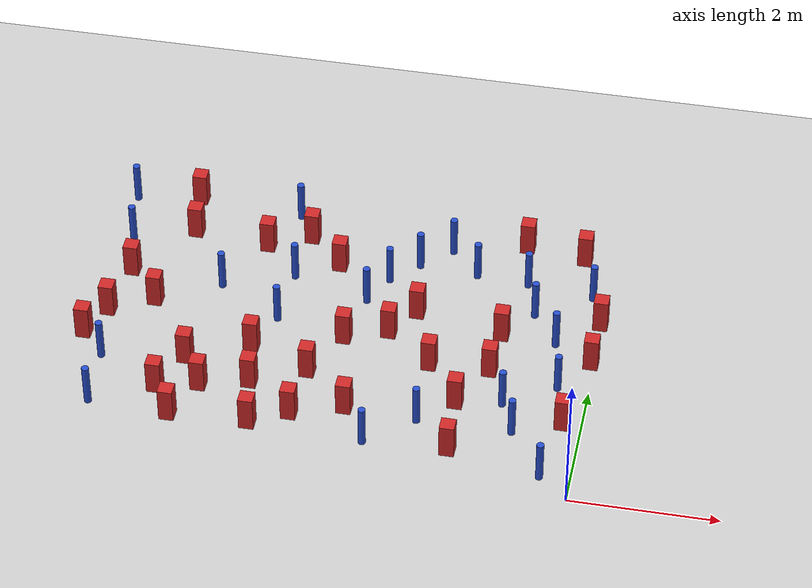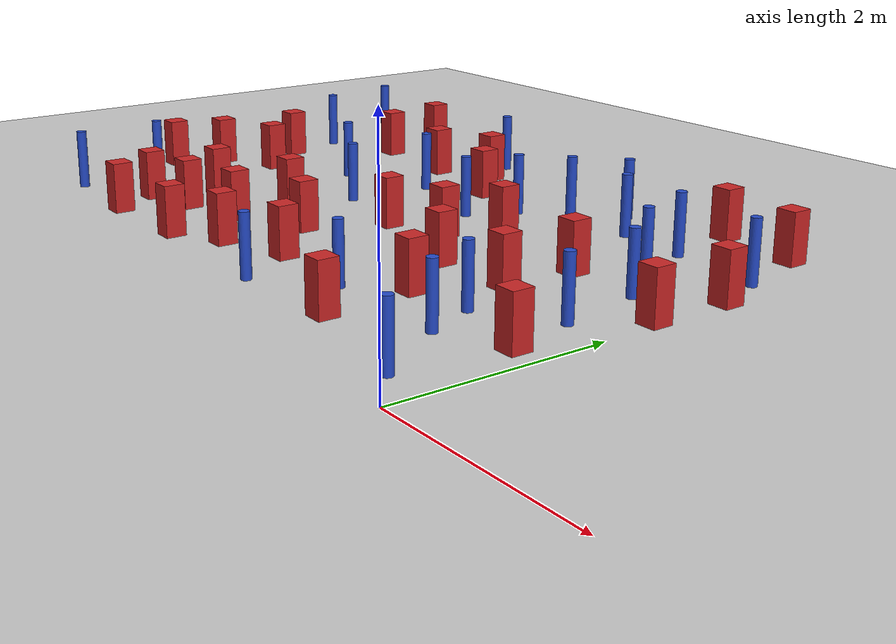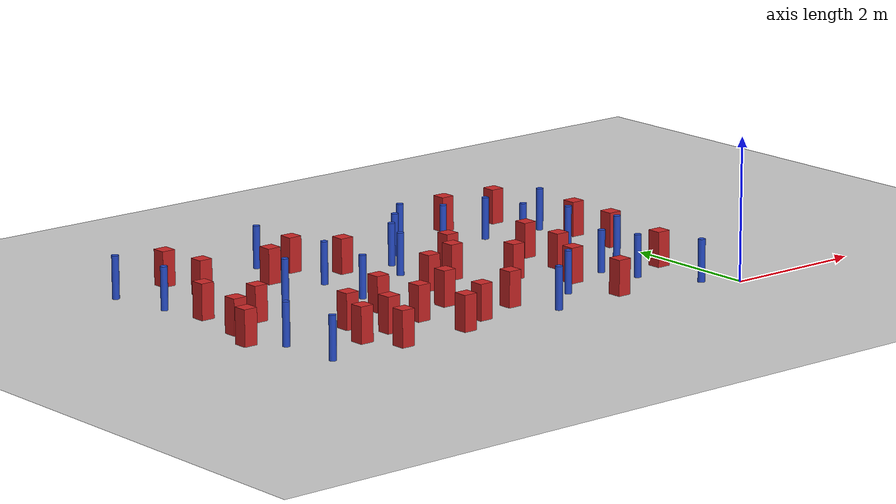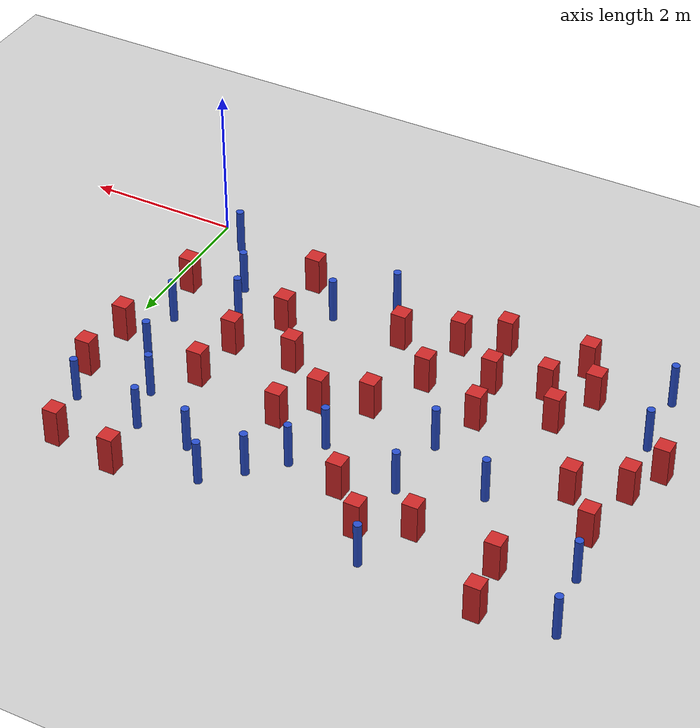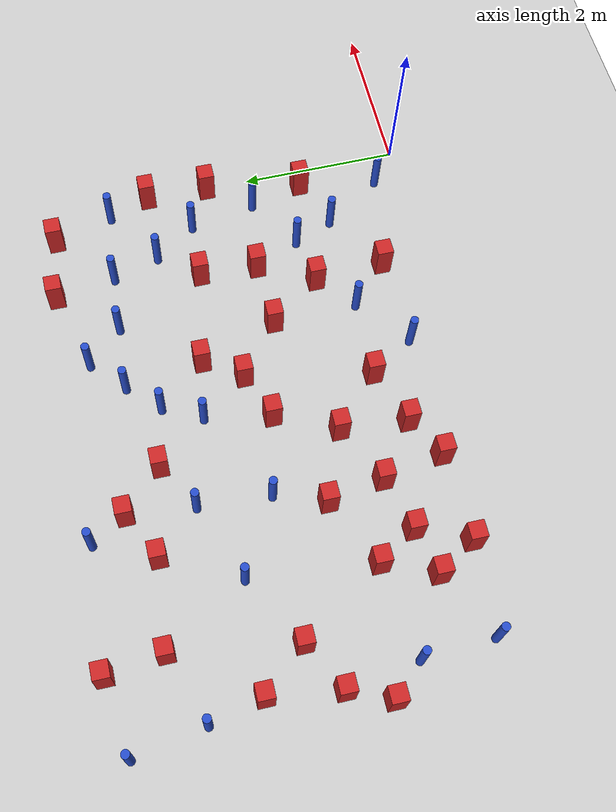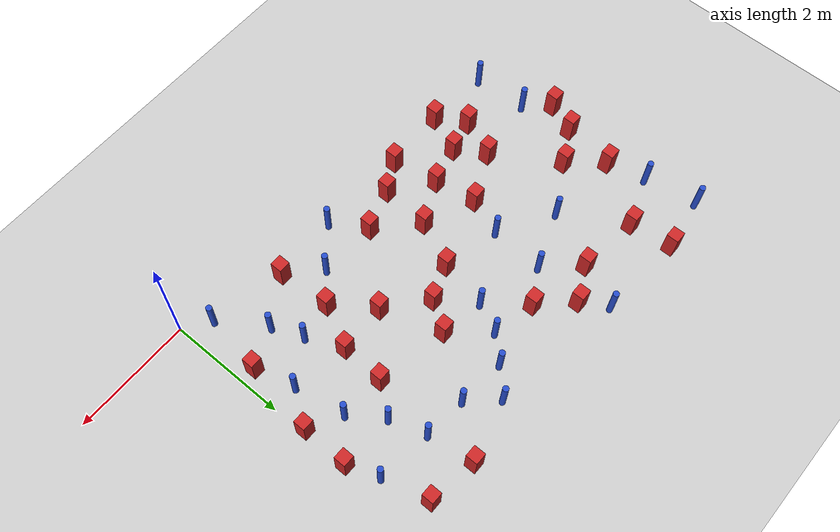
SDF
<sdf version="1.6">
 <world name="default">
  <model name="ground_plane">
   <static>1</static>
   <link name="link">
    <collision name="collision">
     <geometry><plane><normal>0 0 1</normal><size>100 100</size></plane></geometry>
     <surface><friction><ode><mu>100</mu><mu2>50</mu2></ode></friction></surface>
    </collision>
    <visual name="visual">
     <cast_shadows>0</cast_shadows>
     <geometry><plane><normal>0 0 1</normal><size>100 100</size></plane></geometry>
     <material>
      <ambient>1.0 1.0 1.0 1.0</ambient>
      <diffuse>0.8 0.8 0.8 1.0</diffuse>
      <specular>0.01 0.01 0.01 1.000000</specular>
     </material>
    </visual>
   </link>
  </model>
  <model name="square_post_obstacle1">
   <static>true</static>
   <pose>-2.1941598513 2.13643566716 1.91545236811e-07 -7.35059704564e-06 1.12565212e-07 2.39332434364e-05</pose>
   <link name="link">
    <pose>0 0 0.25 0 -0 0</pose>
    <inertial>
     <mass>100</mass>
     <inertia>
      <ixx>0.166667</ixx>
      <ixy>0</ixy>
      <ixz>0</ixz>
      <iyy>0.166667</iyy>
      <iyz>0</iyz>
      <izz>0.166667</izz>
     </inertia>
    </inertial>
    <collision name="collision"><geometry><box><size>.2 .2 .5</size></box></geometry></collision>
    <visual name="visual">
     <geometry><box><size>.2 .2 .5</size></box></geometry>
     <material>
      <script><name>Gazebo/Red</name><uri>file://media/materials/scripts/gazebo.material</uri></script>
     </material>
    </visual>
   </link>
  </model>
  <model name="square_post_obstacle3">
   <static>true</static>
   <pose>-1.26131699538 4.73881055058 1.91545236811e-07 -7.35059704564e-06 1.12565212e-07 2.39332434364e-05</pose>
   <link name="link">
    <pose>0 0 0.25 0 -0 0</pose>
    <inertial>
     <mass>100</mass>
     <inertia>
      <ixx>0.166667</ixx>
      <ixy>0</ixy>
      <ixz>0</ixz>
      <iyy>0.166667</iyy>
      <iyz>0</iyz>
      <izz>0.166667</izz>
     </inertia>
    </inertial>
    <collision name="collision"><geometry><box><size>.2 .2 .5</size></box></geometry></collision>
    <visual name="visual">
     <geometry><box><size>.2 .2 .5</size></box></geometry>
     <material>
      <script><name>Gazebo/Red</name><uri>file://media/materials/scripts/gazebo.material</uri></script>
     </material>
    </visual>
   </link>
  </model>
  <model name="pole_obstacle4">
   <static>true</static>
   <pose>-0.581186451945 2.85597149366 7.38925637345e-09 -8.47170692799e-08 1.2497676509e-08 -1.74513093016e-07</pose>
   <link name="link">
    <pose>0 0 0.3 0 -0 0</pose>
    <inertial>
     <mass>1</mass>
     <inertia><ixx>0.145833</ixx><ixy>0</ixy><ixz>0</ixz><iyy>0.145833</iyy><iyz>0</iyz><izz>0.125</izz></inertia>
    </inertial>
    <collision name="collision">
     <geometry><cylinder><radius>0.05</radius><length>.6</length></cylinder></geometry>
    </collision>
    <visual name="visual">
     <geometry><cylinder><radius>0.05</radius><length>.6</length></cylinder></geometry>
     <material>
      <script><name>Gazebo/Blue</name><uri>file://media/materials/scripts/gazebo.material</uri></script>
     </material>
    </visual>
   </link>
  </model>
  <model name="pole_obstacle8">
   <static>true</static>
   <pose>-2.16732002486 1.0621560365 7.38925637345e-09 -8.471706928e-08 1.24976765152e-08 -1.74513093012e-07</pose>
   <link name="link">
    <pose>0 0 0.3 0 -0 0</pose>
    <inertial>
     <mass>1</mass>
     <inertia><ixx>0.145833</ixx><ixy>0</ixy><ixz>0</ixz><iyy>0.145833</iyy><iyz>0</iyz><izz>0.125</izz></inertia>
    </inertial>
    <collision name="collision">
     <geometry><cylinder><radius>0.05</radius><length>.6</length></cylinder></geometry>
    </collision>
    <visual name="visual">
     <geometry><cylinder><radius>0.05</radius><length>.6</length></cylinder></geometry>
     <material>
      <script><name>Gazebo/Blue</name><uri>file://media/materials/scripts/gazebo.material</uri></script>
     </material>
    </visual>
   </link>
  </model>
  <model name="square_post_obstacle19">
   <static>true</static>
   <pose>-1.37294681692 2.16979224716 1.91545236811e-07 -7.35059704564e-06 1.12565212e-07 2.39332434364e-05</pose>
   <link name="link">
    <pose>0 0 0.25 0 -0 0</pose>
    <inertial>
     <mass>100</mass>
     <inertia>
      <ixx>0.166667</ixx>
      <ixy>0</ixy>
      <ixz>0</ixz>
      <iyy>0.166667</iyy>
      <iyz>0</iyz>
      <izz>0.166667</izz>
     </inertia>
    </inertial>
    <collision name="collision"><geometry><box><size>.2 .2 .5</size></box></geometry></collision>
    <visual name="visual">
     <geometry><box><size>.2 .2 .5</size></box></geometry>
     <material>
      <script><name>Gazebo/Red</name><uri>file://media/materials/scripts/gazebo.material</uri></script>
     </material>
    </visual>
   </link>
  </model>
  <model name="square_post_obstacle20">
   <static>true</static>
   <pose>-5.15516237254 1.18091406253 1.91545236811e-07 -7.35059704564e-06 1.12565212e-07 2.39332434364e-05</pose>
   <link name="link">
    <pose>0 0 0.25 0 -0 0</pose>
    <inertial>
     <mass>100</mass>
     <inertia>
      <ixx>0.166667</ixx>
      <ixy>0</ixy>
      <ixz>0</ixz>
      <iyy>0.166667</iyy>
      <iyz>0</iyz>
      <izz>0.166667</izz>
     </inertia>
    </inertial>
    <collision name="collision"><geometry><box><size>.2 .2 .5</size></box></geometry></collision>
    <visual name="visual">
     <geometry><box><size>.2 .2 .5</size></box></geometry>
     <material>
      <script><name>Gazebo/Red</name><uri>file://media/materials/scripts/gazebo.material</uri></script>
     </material>
    </visual>
   </link>
  </model>
  <model name="square_post_obstacle26">
   <static>true</static>
   <pose>-4.62506961678 2.05364620012 1.91545236811e-07 -7.35059704564e-06 1.12565212e-07 2.39332434364e-05</pose>
   <link name="link">
    <pose>0 0 0.25 0 -0 0</pose>
    <inertial>
     <mass>100</mass>
     <inertia>
      <ixx>0.166667</ixx>
      <ixy>0</ixy>
      <ixz>0</ixz>
      <iyy>0.166667</iyy>
      <iyz>0</iyz>
      <izz>0.166667</izz>
     </inertia>
    </inertial>
    <collision name="collision"><geometry><box><size>.2 .2 .5</size></box></geometry></collision>
    <visual name="visual">
     <geometry><box><size>.2 .2 .5</size></box></geometry>
     <material>
      <script><name>Gazebo/Red</name><uri>file://media/materials/scripts/gazebo.material</uri></script>
     </material>
    </visual>
   </link>
  </model>
  <model name="square_post_obstacle28">
   <static>true</static>
   <pose>-3.84744524515 0.870388942941 1.91545236811e-07 -7.35059704564e-06 1.12565212e-07 2.39332434364e-05</pose>
   <link name="link">
    <pose>0 0 0.25 0 -0 0</pose>
    <inertial>
     <mass>100</mass>
     <inertia>
      <ixx>0.166667</ixx>
      <ixy>0</ixy>
      <ixz>0</ixz>
      <iyy>0.166667</iyy>
      <iyz>0</iyz>
      <izz>0.166667</izz>
     </inertia>
    </inertial>
    <collision name="collision"><geometry><box><size>.2 .2 .5</size></box></geometry></collision>
    <visual name="visual">
     <geometry><box><size>.2 .2 .5</size></box></geometry>
     <material>
      <script><name>Gazebo/Red</name><uri>file://media/materials/scripts/gazebo.material</uri></script>
     </material>
    </visual>
   </link>
  </model>
  <model name="pole_obstacle19">
   <static>true</static>
   <pose>-3.03865753315 3.7216535763 7.38925637345e-09 -8.471706928e-08 1.24976765098e-08 -1.74513093016e-07</pose>
   <link name="link">
    <pose>0 0 0.3 0 -0 0</pose>
    <inertial>
     <mass>1</mass>
     <inertia><ixx>0.145833</ixx><ixy>0</ixy><ixz>0</ixz><iyy>0.145833</iyy><iyz>0</iyz><izz>0.125</izz></inertia>
    </inertial>
    <collision name="collision">
     <geometry><cylinder><radius>0.05</radius><length>.6</length></cylinder></geometry>
    </collision>
    <visual name="visual">
     <geometry><cylinder><radius>0.05</radius><length>.6</length></cylinder></geometry>
     <material>
      <script><name>Gazebo/Blue</name><uri>file://media/materials/scripts/gazebo.material</uri></script>
     </material>
    </visual>
   </link>
  </model>
  <model name="square_post_obstacle31">
   <static>true</static>
   <pose>-3.14923688719 1.11010596729 1.91545236811e-07 -7.35059704564e-06 1.12565212e-07 2.39332434364e-05</pose>
   <link name="link">
    <pose>0 0 0.25 0 -0 0</pose>
    <inertial>
     <mass>100</mass>
     <inertia>
      <ixx>0.166667</ixx>
      <ixy>0</ixy>
      <ixz>0</ixz>
      <iyy>0.166667</iyy>
      <iyz>0</iyz>
      <izz>0.166667</izz>
     </inertia>
    </inertial>
    <collision name="collision"><geometry><box><size>.2 .2 .5</size></box></geometry></collision>
    <visual name="visual">
     <geometry><box><size>.2 .2 .5</size></box></geometry>
     <material>
      <script><name>Gazebo/Red</name><uri>file://media/materials/scripts/gazebo.material</uri></script>
     </material>
    </visual>
   </link>
  </model>
  <model name="pole_obstacle24">
   <static>true</static>
   <pose>-2.79543351496 0.53708310227 7.38925637345e-09 -8.471706928e-08 1.24976765147e-08 -1.74513093014e-07</pose>
   <link name="link">
    <pose>0 0 0.3 0 -0 0</pose>
    <inertial>
     <mass>1</mass>
     <inertia><ixx>0.145833</ixx><ixy>0</ixy><ixz>0</ixz><iyy>0.145833</iyy><iyz>0</iyz><izz>0.125</izz></inertia>
    </inertial>
    <collision name="collision">
     <geometry><cylinder><radius>0.05</radius><length>.6</length></cylinder></geometry>
    </collision>
    <visual name="visual">
     <geometry><cylinder><radius>0.05</radius><length>.6</length></cylinder></geometry>
     <material>
      <script><name>Gazebo/Blue</name><uri>file://media/materials/scripts/gazebo.material</uri></script>
     </material>
    </visual>
   </link>
  </model>
  <model name="square_post_obstacle32">
   <static>true</static>
   <pose>-0.0526810248159 2.56233187725 1.91545236811e-07 -7.35059704564e-06 1.12565212e-07 2.39332434364e-05</pose>
   <link name="link">
    <pose>0 0 0.25 0 -0 0</pose>
    <inertial>
     <mass>100</mass>
     <inertia>
      <ixx>0.166667</ixx>
      <ixy>0</ixy>
      <ixz>0</ixz>
      <iyy>0.166667</iyy>
      <iyz>0</iyz>
      <izz>0.166667</izz>
     </inertia>
    </inertial>
    <collision name="collision"><geometry><box><size>.2 .2 .5</size></box></geometry></collision>
    <visual name="visual">
     <geometry><box><size>.2 .2 .5</size></box></geometry>
     <material>
      <script><name>Gazebo/Red</name><uri>file://media/materials/scripts/gazebo.material</uri></script>
     </material>
    </visual>
   </link>
  </model>
  <model name="pole_obstacle31">
   <static>true</static>
   <pose>-6.53448392592 0.619417620157 7.38925637345e-09 -8.47170692799e-08 1.24976765038e-08 -1.74513093018e-07</pose>
   <link name="link">
    <pose>0 0 0.3 0 -0 0</pose>
    <inertial>
     <mass>1</mass>
     <inertia><ixx>0.145833</ixx><ixy>0</ixy><ixz>0</ixz><iyy>0.145833</iyy><iyz>0</iyz><izz>0.125</izz></inertia>
    </inertial>
    <collision name="collision">
     <geometry><cylinder><radius>0.05</radius><length>.6</length></cylinder></geometry>
    </collision>
    <visual name="visual">
     <geometry><cylinder><radius>0.05</radius><length>.6</length></cylinder></geometry>
     <material>
      <script><name>Gazebo/Blue</name><uri>file://media/materials/scripts/gazebo.material</uri></script>
     </material>
    </visual>
   </link>
  </model>
  <model name="square_post_obstacle36">
   <static>true</static>
   <pose>-0.433892986571 4.62385572912 1.91545236811e-07 -7.35059704564e-06 1.12565212e-07 2.39332434364e-05</pose>
   <link name="link">
    <pose>0 0 0.25 0 -0 0</pose>
    <inertial>
     <mass>100</mass>
     <inertia>
      <ixx>0.166667</ixx>
      <ixy>0</ixy>
      <ixz>0</ixz>
      <iyy>0.166667</iyy>
      <iyz>0</iyz>
      <izz>0.166667</izz>
     </inertia>
    </inertial>
    <collision name="collision"><geometry><box><size>.2 .2 .5</size></box></geometry></collision>
    <visual name="visual">
     <geometry><box><size>.2 .2 .5</size></box></geometry>
     <material>
      <script><name>Gazebo/Red</name><uri>file://media/materials/scripts/gazebo.material</uri></script>
     </material>
    </visual>
   </link>
  </model>
  <model name="pole_obstacle39">
   <static>true</static>
   <pose>-4.34571707519 3.55198365419 7.38925637345e-09 -8.47170692798e-08 1.24976764937e-08 -1.74513093023e-07</pose>
   <link name="link">
    <pose>0 0 0.3 0 -0 0</pose>
    <inertial>
     <mass>1</mass>
     <inertia><ixx>0.145833</ixx><ixy>0</ixy><ixz>0</ixz><iyy>0.145833</iyy><iyz>0</iyz><izz>0.125</izz></inertia>
    </inertial>
    <collision name="collision">
     <geometry><cylinder><radius>0.05</radius><length>.6</length></cylinder></geometry>
    </collision>
    <visual name="visual">
     <geometry><cylinder><radius>0.05</radius><length>.6</length></cylinder></geometry>
     <material>
      <script><name>Gazebo/Blue</name><uri>file://media/materials/scripts/gazebo.material</uri></script>
     </material>
    </visual>
   </link>
  </model>
  <model name="pole_obstacle46">
   <static>true</static>
   <pose>-1.13536427486 3.97697436497 7.38925637345e-09 -8.47170692799e-08 1.24976765077e-08 -1.74513093019e-07</pose>
   <link name="link">
    <pose>0 0 0.3 0 -0 0</pose>
    <inertial>
     <mass>1</mass>
     <inertia><ixx>0.145833</ixx><ixy>0</ixy><ixz>0</ixz><iyy>0.145833</iyy><iyz>0</iyz><izz>0.125</izz></inertia>
    </inertial>
    <collision name="collision">
     <geometry><cylinder><radius>0.05</radius><length>.6</length></cylinder></geometry>
    </collision>
    <visual name="visual">
     <geometry><cylinder><radius>0.05</radius><length>.6</length></cylinder></geometry>
     <material>
      <script><name>Gazebo/Blue</name><uri>file://media/materials/scripts/gazebo.material</uri></script>
     </material>
    </visual>
   </link>
  </model>
  <model name="square_post_obstacle55">
   <static>true</static>
   <pose>-6.59568243393 3.25727809633 1.91545236811e-07 -7.35059704564e-06 1.12565212e-07 2.39332434364e-05</pose>
   <link name="link">
    <pose>0 0 0.25 0 -0 0</pose>
    <inertial>
     <mass>100</mass>
     <inertia>
      <ixx>0.166667</ixx>
      <ixy>0</ixy>
      <ixz>0</ixz>
      <iyy>0.166667</iyy>
      <iyz>0</iyz>
      <izz>0.166667</izz>
     </inertia>
    </inertial>
    <collision name="collision"><geometry><box><size>.2 .2 .5</size></box></geometry></collision>
    <visual name="visual">
     <geometry><box><size>.2 .2 .5</size></box></geometry>
     <material>
      <script><name>Gazebo/Red</name><uri>file://media/materials/scripts/gazebo.material</uri></script>
     </material>
    </visual>
   </link>
  </model>
  <model name="pole_obstacle55">
   <static>true</static>
   <pose>-0.408426533875 0.336717864815 7.38925637345e-09 -8.471706928e-08 1.24976765138e-08 -1.74513093013e-07</pose>
   <link name="link">
    <pose>0 0 0.3 0 -0 0</pose>
    <inertial>
     <mass>1</mass>
     <inertia><ixx>0.145833</ixx><ixy>0</ixy><ixz>0</ixz><iyy>0.145833</iyy><iyz>0</iyz><izz>0.125</izz></inertia>
    </inertial>
    <collision name="collision">
     <geometry><cylinder><radius>0.05</radius><length>.6</length></cylinder></geometry>
    </collision>
    <visual name="visual">
     <geometry><cylinder><radius>0.05</radius><length>.6</length></cylinder></geometry>
     <material>
      <script><name>Gazebo/Blue</name><uri>file://media/materials/scripts/gazebo.material</uri></script>
     </material>
    </visual>
   </link>
  </model>
  <model name="square_post_obstacle59">
   <static>true</static>
   <pose>-5.91023444782 4.20954370564 1.91545236811e-07 -7.35059704564e-06 1.12565212e-07 2.39332434364e-05</pose>
   <link name="link">
    <pose>0 0 0.25 0 -0 0</pose>
    <inertial>
     <mass>100</mass>
     <inertia>
      <ixx>0.166667</ixx>
      <ixy>0</ixy>
      <ixz>0</ixz>
      <iyy>0.166667</iyy>
      <iyz>0</iyz>
      <izz>0.166667</izz>
     </inertia>
    </inertial>
    <collision name="collision"><geometry><box><size>.2 .2 .5</size></box></geometry></collision>
    <visual name="visual">
     <geometry><box><size>.2 .2 .5</size></box></geometry>
     <material>
      <script><name>Gazebo/Red</name><uri>file://media/materials/scripts/gazebo.material</uri></script>
     </material>
    </visual>
   </link>
  </model>
  <model name="pole_obstacle57">
   <static>true</static>
   <pose>-3.27148219445 3.2475853651 7.38925637345e-09 -8.471706928e-08 1.24976765098e-08 -1.74513093016e-07</pose>
   <link name="link">
    <pose>0 0 0.3 0 -0 0</pose>
    <inertial>
     <mass>1</mass>
     <inertia><ixx>0.145833</ixx><ixy>0</ixy><ixz>0</ixz><iyy>0.145833</iyy><iyz>0</iyz><izz>0.125</izz></inertia>
    </inertial>
    <collision name="collision">
     <geometry><cylinder><radius>0.05</radius><length>.6</length></cylinder></geometry>
    </collision>
    <visual name="visual">
     <geometry><cylinder><radius>0.05</radius><length>.6</length></cylinder></geometry>
     <material>
      <script><name>Gazebo/Blue</name><uri>file://media/materials/scripts/gazebo.material</uri></script>
     </material>
    </visual>
   </link>
  </model>
  <model name="pole_obstacle58">
   <static>true</static>
   <pose>-0.895413648586 1.07865055747 7.38925637345e-09 -8.47170692799e-08 1.24976765033e-08 -1.7451309302e-07</pose>
   <link name="link">
    <pose>0 0 0.3 0 -0 0</pose>
    <inertial>
     <mass>1</mass>
     <inertia><ixx>0.145833</ixx><ixy>0</ixy><ixz>0</ixz><iyy>0.145833</iyy><iyz>0</iyz><izz>0.125</izz></inertia>
    </inertial>
    <collision name="collision">
     <geometry><cylinder><radius>0.05</radius><length>.6</length></cylinder></geometry>
    </collision>
    <visual name="visual">
     <geometry><cylinder><radius>0.05</radius><length>.6</length></cylinder></geometry>
     <material>
      <script><name>Gazebo/Blue</name><uri>file://media/materials/scripts/gazebo.material</uri></script>
     </material>
    </visual>
   </link>
  </model>
  <model name="square_post_obstacle63">
   <static>true</static>
   <pose>-1.66404484746 0.593450555984 1.91545236811e-07 -7.35059704564e-06 1.12565212e-07 2.39332434364e-05</pose>
   <link name="link">
    <pose>0 0 0.25 0 -0 0</pose>
    <inertial>
     <mass>100</mass>
     <inertia>
      <ixx>0.166667</ixx>
      <ixy>0</ixy>
      <ixz>0</ixz>
      <iyy>0.166667</iyy>
      <iyz>0</iyz>
      <izz>0.166667</izz>
     </inertia>
    </inertial>
    <collision name="collision"><geometry><box><size>.2 .2 .5</size></box></geometry></collision>
    <visual name="visual">
     <geometry><box><size>.2 .2 .5</size></box></geometry>
     <material>
      <script><name>Gazebo/Red</name><uri>file://media/materials/scripts/gazebo.material</uri></script>
     </material>
    </visual>
   </link>
  </model>
  <model name="pole_obstacle65">
   <static>true</static>
   <pose>-4.40156717569 2.66178698913 7.38925637345e-09 -8.47170692798e-08 1.24976764937e-08 -1.74513093023e-07</pose>
   <link name="link">
    <pose>0 0 0.3 0 -0 0</pose>
    <inertial>
     <mass>1</mass>
     <inertia><ixx>0.145833</ixx><ixy>0</ixy><ixz>0</ixz><iyy>0.145833</iyy><iyz>0</iyz><izz>0.125</izz></inertia>
    </inertial>
    <collision name="collision">
     <geometry><cylinder><radius>0.05</radius><length>.6</length></cylinder></geometry>
    </collision>
    <visual name="visual">
     <geometry><cylinder><radius>0.05</radius><length>.6</length></cylinder></geometry>
     <material>
      <script><name>Gazebo/Blue</name><uri>file://media/materials/scripts/gazebo.material</uri></script>
     </material>
    </visual>
   </link>
  </model>
  <model name="square_post_obstacle68">
   <static>true</static>
   <pose>-3.77902504352 1.70034725356 1.91545236811e-07 -7.35059704564e-06 1.12565212e-07 2.39332434364e-05</pose>
   <link name="link">
    <pose>0 0 0.25 0 -0 0</pose>
    <inertial>
     <mass>100</mass>
     <inertia>
      <ixx>0.166667</ixx>
      <ixy>0</ixy>
      <ixz>0</ixz>
      <iyy>0.166667</iyy>
      <iyz>0</iyz>
      <izz>0.166667</izz>
     </inertia>
    </inertial>
    <collision name="collision"><geometry><box><size>.2 .2 .5</size></box></geometry></collision>
    <visual name="visual">
     <geometry><box><size>.2 .2 .5</size></box></geometry>
     <material>
      <script><name>Gazebo/Red</name><uri>file://media/materials/scripts/gazebo.material</uri></script>
     </material>
    </visual>
   </link>
  </model>
  <model name="square_post_obstacle76">
   <static>true</static>
   <pose>-6.92939163833 1.90002991715 1.91545236811e-07 -7.35059704564e-06 1.12565212e-07 2.39332434364e-05</pose>
   <link name="link">
    <pose>0 0 0.25 0 -0 0</pose>
    <inertial>
     <mass>100</mass>
     <inertia>
      <ixx>0.166667</ixx>
      <ixy>0</ixy>
      <ixz>0</ixz>
      <iyy>0.166667</iyy>
      <iyz>0</iyz>
      <izz>0.166667</izz>
     </inertia>
    </inertial>
    <collision name="collision"><geometry><box><size>.2 .2 .5</size></box></geometry></collision>
    <visual name="visual">
     <geometry><box><size>.2 .2 .5</size></box></geometry>
     <material>
      <script><name>Gazebo/Red</name><uri>file://media/materials/scripts/gazebo.material</uri></script>
     </material>
    </visual>
   </link>
  </model>
  <model name="square_post_obstacle79">
   <static>true</static>
   <pose>-4.49976506999 1.3588355675 1.91545236811e-07 -7.35059704564e-06 1.12565212e-07 2.39332434364e-05</pose>
   <link name="link">
    <pose>0 0 0.25 0 -0 0</pose>
    <inertial>
     <mass>100</mass>
     <inertia>
      <ixx>0.166667</ixx>
      <ixy>0</ixy>
      <ixz>0</ixz>
      <iyy>0.166667</iyy>
      <iyz>0</iyz>
      <izz>0.166667</izz>
     </inertia>
    </inertial>
    <collision name="collision"><geometry><box><size>.2 .2 .5</size></box></geometry></collision>
    <visual name="visual">
     <geometry><box><size>.2 .2 .5</size></box></geometry>
     <material>
      <script><name>Gazebo/Red</name><uri>file://media/materials/scripts/gazebo.material</uri></script>
     </material>
    </visual>
   </link>
  </model>
  <model name="pole_obstacle81">
   <static>true</static>
   <pose>-2.27327679606 4.47304552556 7.38925637345e-09 -8.47170692798e-08 1.24976765033e-08 -1.74513093019e-07</pose>
   <link name="link">
    <pose>0 0 0.3 0 -0 0</pose>
    <inertial>
     <mass>1</mass>
     <inertia><ixx>0.145833</ixx><ixy>0</ixy><ixz>0</ixz><iyy>0.145833</iyy><iyz>0</iyz><izz>0.125</izz></inertia>
    </inertial>
    <collision name="collision">
     <geometry><cylinder><radius>0.05</radius><length>.6</length></cylinder></geometry>
    </collision>
    <visual name="visual">
     <geometry><cylinder><radius>0.05</radius><length>.6</length></cylinder></geometry>
     <material>
      <script><name>Gazebo/Blue</name><uri>file://media/materials/scripts/gazebo.material</uri></script>
     </material>
    </visual>
   </link>
  </model>
  <model name="pole_obstacle88">
   <static>true</static>
   <pose>-0.426255439688 2.01709335867 7.38925637345e-09 -8.47170692799e-08 1.2497676506e-08 -1.74513093018e-07</pose>
   <link name="link">
    <pose>0 0 0.3 0 -0 0</pose>
    <inertial>
     <mass>1</mass>
     <inertia><ixx>0.145833</ixx><ixy>0</ixy><ixz>0</ixz><iyy>0.145833</iyy><iyz>0</iyz><izz>0.125</izz></inertia>
    </inertial>
    <collision name="collision">
     <geometry><cylinder><radius>0.05</radius><length>.6</length></cylinder></geometry>
    </collision>
    <visual name="visual">
     <geometry><cylinder><radius>0.05</radius><length>.6</length></cylinder></geometry>
     <material>
      <script><name>Gazebo/Blue</name><uri>file://media/materials/scripts/gazebo.material</uri></script>
     </material>
    </visual>
   </link>
  </model>
  <model name="pole_obstacle89">
   <static>true</static>
   <pose>-2.6756034672 4.09439892584 7.38925637345e-09 -8.47170692798e-08 1.24976765033e-08 -1.74513093019e-07</pose>
   <link name="link">
    <pose>0 0 0.3 0 -0 0</pose>
    <inertial>
     <mass>1</mass>
     <inertia><ixx>0.145833</ixx><ixy>0</ixy><ixz>0</ixz><iyy>0.145833</iyy><iyz>0</iyz><izz>0.125</izz></inertia>
    </inertial>
    <collision name="collision">
     <geometry><cylinder><radius>0.05</radius><length>.6</length></cylinder></geometry>
    </collision>
    <visual name="visual">
     <geometry><cylinder><radius>0.05</radius><length>.6</length></cylinder></geometry>
     <material>
      <script><name>Gazebo/Blue</name><uri>file://media/materials/scripts/gazebo.material</uri></script>
     </material>
    </visual>
   </link>
  </model>
  <model name="pole_obstacle101">
   <static>true</static>
   <pose>-6.91008888231 4.77952718599 7.38925637345e-09 -8.47170692796e-08 1.24976764786e-08 -1.74513093032e-07</pose>
   <link name="link">
    <pose>0 0 0.3 0 -0 0</pose>
    <inertial>
     <mass>1</mass>
     <inertia><ixx>0.145833</ixx><ixy>0</ixy><ixz>0</ixz><iyy>0.145833</iyy><iyz>0</iyz><izz>0.125</izz></inertia>
    </inertial>
    <collision name="collision">
     <geometry><cylinder><radius>0.05</radius><length>.6</length></cylinder></geometry>
    </collision>
    <visual name="visual">
     <geometry><cylinder><radius>0.05</radius><length>.6</length></cylinder></geometry>
     <material>
      <script><name>Gazebo/Blue</name><uri>file://media/materials/scripts/gazebo.material</uri></script>
     </material>
    </visual>
   </link>
  </model>
  <model name="square_post_obstacle103">
   <static>true</static>
   <pose>-5.42596708468 0.558949983356 1.91545236811e-07 -7.35059704564e-06 1.12565212e-07 2.39332434364e-05</pose>
   <link name="link">
    <pose>0 0 0.25 0 -0 0</pose>
    <inertial>
     <mass>100</mass>
     <inertia>
      <ixx>0.166667</ixx>
      <ixy>0</ixy>
      <ixz>0</ixz>
      <iyy>0.166667</iyy>
      <iyz>0</iyz>
      <izz>0.166667</izz>
     </inertia>
    </inertial>
    <collision name="collision"><geometry><box><size>.2 .2 .5</size></box></geometry></collision>
    <visual name="visual">
     <geometry><box><size>.2 .2 .5</size></box></geometry>
     <material>
      <script><name>Gazebo/Red</name><uri>file://media/materials/scripts/gazebo.material</uri></script>
     </material>
    </visual>
   </link>
  </model>
  <model name="pole_obstacle126">
   <static>true</static>
   <pose>-0.948600822896 3.38396701841 7.38925637345e-09 -8.47170692799e-08 1.2497676509e-08 -1.74513093016e-07</pose>
   <link name="link">
    <pose>0 0 0.3 0 -0 0</pose>
    <inertial>
     <mass>1</mass>
     <inertia><ixx>0.145833</ixx><ixy>0</ixy><ixz>0</ixz><iyy>0.145833</iyy><iyz>0</iyz><izz>0.125</izz></inertia>
    </inertial>
    <collision name="collision">
     <geometry><cylinder><radius>0.05</radius><length>.6</length></cylinder></geometry>
    </collision>
    <visual name="visual">
     <geometry><cylinder><radius>0.05</radius><length>.6</length></cylinder></geometry>
     <material>
      <script><name>Gazebo/Blue</name><uri>file://media/materials/scripts/gazebo.material</uri></script>
     </material>
    </visual>
   </link>
  </model>
  <model name="square_post_obstacle113">
   <static>true</static>
   <pose>-5.71623176073 1.03855080795 1.91545236811e-07 -7.35059704564e-06 1.12565212e-07 2.39332434364e-05</pose>
   <link name="link">
    <pose>0 0 0.25 0 -0 0</pose>
    <inertial>
     <mass>100</mass>
     <inertia>
      <ixx>0.166667</ixx>
      <ixy>0</ixy>
      <ixz>0</ixz>
      <iyy>0.166667</iyy>
      <iyz>0</iyz>
      <izz>0.166667</izz>
     </inertia>
    </inertial>
    <collision name="collision"><geometry><box><size>.2 .2 .5</size></box></geometry></collision>
    <visual name="visual">
     <geometry><box><size>.2 .2 .5</size></box></geometry>
     <material>
      <script><name>Gazebo/Red</name><uri>file://media/materials/scripts/gazebo.material</uri></script>
     </material>
    </visual>
   </link>
  </model>
  <model name="pole_obstacle140">
   <static>true</static>
   <pose>-1.10399670461 1.58029163451 7.38925637345e-09 -8.471706928e-08 1.24976765079e-08 -1.74513093017e-07</pose>
   <link name="link">
    <pose>0 0 0.3 0 -0 0</pose>
    <inertial>
     <mass>1</mass>
     <inertia><ixx>0.145833</ixx><ixy>0</ixy><ixz>0</ixz><iyy>0.145833</iyy><iyz>0</iyz><izz>0.125</izz></inertia>
    </inertial>
    <collision name="collision">
     <geometry><cylinder><radius>0.05</radius><length>.6</length></cylinder></geometry>
    </collision>
    <visual name="visual">
     <geometry><cylinder><radius>0.05</radius><length>.6</length></cylinder></geometry>
     <material>
      <script><name>Gazebo/Blue</name><uri>file://media/materials/scripts/gazebo.material</uri></script>
     </material>
    </visual>
   </link>
  </model>
  <model name="square_post_obstacle130">
   <static>true</static>
   <pose>-4.84663508681 4.09484469183 1.91545236811e-07 -7.35059704564e-06 1.12565212e-07 2.39332434364e-05</pose>
   <link name="link">
    <pose>0 0 0.25 0 -0 0</pose>
    <inertial>
     <mass>100</mass>
     <inertia>
      <ixx>0.166667</ixx>
      <ixy>0</ixy>
      <ixz>0</ixz>
      <iyy>0.166667</iyy>
      <iyz>0</iyz>
      <izz>0.166667</izz>
     </inertia>
    </inertial>
    <collision name="collision"><geometry><box><size>.2 .2 .5</size></box></geometry></collision>
    <visual name="visual">
     <geometry><box><size>.2 .2 .5</size></box></geometry>
     <material>
      <script><name>Gazebo/Red</name><uri>file://media/materials/scripts/gazebo.material</uri></script>
     </material>
    </visual>
   </link>
  </model>
  <model name="square_post_obstacle132">
   <static>true</static>
   <pose>-6.13397409122 2.71282919518 1.91545236811e-07 -7.35059704564e-06 1.12565212e-07 2.39332434364e-05</pose>
   <link name="link">
    <pose>0 0 0.25 0 -0 0</pose>
    <inertial>
     <mass>100</mass>
     <inertia>
      <ixx>0.166667</ixx>
      <ixy>0</ixy>
      <ixz>0</ixz>
      <iyy>0.166667</iyy>
      <iyz>0</iyz>
      <izz>0.166667</izz>
     </inertia>
    </inertial>
    <collision name="collision"><geometry><box><size>.2 .2 .5</size></box></geometry></collision>
    <visual name="visual">
     <geometry><box><size>.2 .2 .5</size></box></geometry>
     <material>
      <script><name>Gazebo/Red</name><uri>file://media/materials/scripts/gazebo.material</uri></script>
     </material>
    </visual>
   </link>
  </model>
  <model name="pole_obstacle148">
   <static>true</static>
   <pose>-6.75195807704 3.90552621848 7.38925637345e-09 -8.47170692798e-08 1.24976764937e-08 -1.74513093023e-07</pose>
   <link name="link">
    <pose>0 0 0.3 0 -0 0</pose>
    <inertial>
     <mass>1</mass>
     <inertia><ixx>0.145833</ixx><ixy>0</ixy><ixz>0</ixz><iyy>0.145833</iyy><iyz>0</iyz><izz>0.125</izz></inertia>
    </inertial>
    <collision name="collision">
     <geometry><cylinder><radius>0.05</radius><length>.6</length></cylinder></geometry>
    </collision>
    <visual name="visual">
     <geometry><cylinder><radius>0.05</radius><length>.6</length></cylinder></geometry>
     <material>
      <script><name>Gazebo/Blue</name><uri>file://media/materials/scripts/gazebo.material</uri></script>
     </material>
    </visual>
   </link>
  </model>
  <model name="square_post_obstacle143">
   <static>true</static>
   <pose>-6.71835806891 2.39835429119 1.91545236811e-07 -7.35059704564e-06 1.12565212e-07 2.39332434364e-05</pose>
   <link name="link">
    <pose>0 0 0.25 0 -0 0</pose>
    <inertial>
     <mass>100</mass>
     <inertia>
      <ixx>0.166667</ixx>
      <ixy>0</ixy>
      <ixz>0</ixz>
      <iyy>0.166667</iyy>
      <iyz>0</iyz>
      <izz>0.166667</izz>
     </inertia>
    </inertial>
    <collision name="collision"><geometry><box><size>.2 .2 .5</size></box></geometry></collision>
    <visual name="visual">
     <geometry><box><size>.2 .2 .5</size></box></geometry>
     <material>
      <script><name>Gazebo/Red</name><uri>file://media/materials/scripts/gazebo.material</uri></script>
     </material>
    </visual>
   </link>
  </model>
  <model name="square_post_obstacle148">
   <static>true</static>
   <pose>-3.42908915561 2.44050253954 1.91545236811e-07 -7.35059704564e-06 1.12565212e-07 2.39332434364e-05</pose>
   <link name="link">
    <pose>0 0 0.25 0 -0 0</pose>
    <inertial>
     <mass>100</mass>
     <inertia>
      <ixx>0.166667</ixx>
      <ixy>0</ixy>
      <ixz>0</ixz>
      <iyy>0.166667</iyy>
      <iyz>0</iyz>
      <izz>0.166667</izz>
     </inertia>
    </inertial>
    <collision name="collision"><geometry><box><size>.2 .2 .5</size></box></geometry></collision>
    <visual name="visual">
     <geometry><box><size>.2 .2 .5</size></box></geometry>
     <material>
      <script><name>Gazebo/Red</name><uri>file://media/materials/scripts/gazebo.material</uri></script>
     </material>
    </visual>
   </link>
  </model>
  <model name="square_post_obstacle150">
   <static>true</static>
   <pose>-1.32899469526 2.89722404374 1.91545236811e-07 -7.35059704564e-06 1.12565212e-07 2.39332434364e-05</pose>
   <link name="link">
    <pose>0 0 0.25 0 -0 0</pose>
    <inertial>
     <mass>100</mass>
     <inertia>
      <ixx>0.166667</ixx>
      <ixy>0</ixy>
      <ixz>0</ixz>
      <iyy>0.166667</iyy>
      <iyz>0</iyz>
      <izz>0.166667</izz>
     </inertia>
    </inertial>
    <collision name="collision"><geometry><box><size>.2 .2 .5</size></box></geometry></collision>
    <visual name="visual">
     <geometry><box><size>.2 .2 .5</size></box></geometry>
     <material>
      <script><name>Gazebo/Red</name><uri>file://media/materials/scripts/gazebo.material</uri></script>
     </material>
    </visual>
   </link>
  </model>
  <model name="pole_obstacle158">
   <static>true</static>
   <pose>-1.85774501021 4.03360160623 7.38925637345e-09 -8.47170692799e-08 1.24976765024e-08 -1.7451309302e-07</pose>
   <link name="link">
    <pose>0 0 0.3 0 -0 0</pose>
    <inertial>
     <mass>1</mass>
     <inertia><ixx>0.145833</ixx><ixy>0</ixy><ixz>0</ixz><iyy>0.145833</iyy><iyz>0</iyz><izz>0.125</izz></inertia>
    </inertial>
    <collision name="collision">
     <geometry><cylinder><radius>0.05</radius><length>.6</length></cylinder></geometry>
    </collision>
    <visual name="visual">
     <geometry><cylinder><radius>0.05</radius><length>.6</length></cylinder></geometry>
     <material>
      <script><name>Gazebo/Blue</name><uri>file://media/materials/scripts/gazebo.material</uri></script>
     </material>
    </visual>
   </link>
  </model>
  <model name="pole_obstacle162">
   <static>true</static>
   <pose>-5.29798781705 3.18636121712 7.38925637345e-09 -8.47170692798e-08 1.24976764937e-08 -1.74513093023e-07</pose>
   <link name="link">
    <pose>0 0 0.3 0 -0 0</pose>
    <inertial>
     <mass>1</mass>
     <inertia><ixx>0.145833</ixx><ixy>0</ixy><ixz>0</ixz><iyy>0.145833</iyy><iyz>0</iyz><izz>0.125</izz></inertia>
    </inertial>
    <collision name="collision">
     <geometry><cylinder><radius>0.05</radius><length>.6</length></cylinder></geometry>
    </collision>
    <visual name="visual">
     <geometry><cylinder><radius>0.05</radius><length>.6</length></cylinder></geometry>
     <material>
      <script><name>Gazebo/Blue</name><uri>file://media/materials/scripts/gazebo.material</uri></script>
     </material>
    </visual>
   </link>
  </model>
  <model name="square_post_obstacle155">
   <static>true</static>
   <pose>-3.77194285504 3.87700984094 1.91545236811e-07 -7.35059704564e-06 1.12565212e-07 2.39332434364e-05</pose>
   <link name="link">
    <pose>0 0 0.25 0 -0 0</pose>
    <inertial>
     <mass>100</mass>
     <inertia>
      <ixx>0.166667</ixx>
      <ixy>0</ixy>
      <ixz>0</ixz>
      <iyy>0.166667</iyy>
      <iyz>0</iyz>
      <izz>0.166667</izz>
     </inertia>
    </inertial>
    <collision name="collision"><geometry><box><size>.2 .2 .5</size></box></geometry></collision>
    <visual name="visual">
     <geometry><box><size>.2 .2 .5</size></box></geometry>
     <material>
      <script><name>Gazebo/Red</name><uri>file://media/materials/scripts/gazebo.material</uri></script>
     </material>
    </visual>
   </link>
  </model>
  <model name="pole_obstacle164">
   <static>true</static>
   <pose>-0.215489382708 3.87282600343 7.38925637345e-09 -8.47170692792e-08 1.24976764353e-08 -1.74513093043e-07</pose>
   <link name="link">
    <pose>0 0 0.3 0 -0 0</pose>
    <inertial>
     <mass>1</mass>
     <inertia><ixx>0.145833</ixx><ixy>0</ixy><ixz>0</ixz><iyy>0.145833</iyy><iyz>0</iyz><izz>0.125</izz></inertia>
    </inertial>
    <collision name="collision">
     <geometry><cylinder><radius>0.05</radius><length>.6</length></cylinder></geometry>
    </collision>
    <visual name="visual">
     <geometry><cylinder><radius>0.05</radius><length>.6</length></cylinder></geometry>
     <material>
      <script><name>Gazebo/Blue</name><uri>file://media/materials/scripts/gazebo.material</uri></script>
     </material>
    </visual>
   </link>
  </model>
  <model name="pole_obstacle172">
   <static>true</static>
   <pose>-6.58757962183 1.50736906657 7.38925637345e-09 -8.471706928e-08 1.24976765134e-08 -1.74513093015e-07</pose>
   <link name="link">
    <pose>0 0 0.3 0 -0 0</pose>
    <inertial>
     <mass>1</mass>
     <inertia><ixx>0.145833</ixx><ixy>0</ixy><ixz>0</ixz><iyy>0.145833</iyy><iyz>0</iyz><izz>0.125</izz></inertia>
    </inertial>
    <collision name="collision">
     <geometry><cylinder><radius>0.05</radius><length>.6</length></cylinder></geometry>
    </collision>
    <visual name="visual">
     <geometry><cylinder><radius>0.05</radius><length>.6</length></cylinder></geometry>
     <material>
      <script><name>Gazebo/Blue</name><uri>file://media/materials/scripts/gazebo.material</uri></script>
     </material>
    </visual>
   </link>
  </model>
  <model name="square_post_obstacle172">
   <static>true</static>
   <pose>-2.53761824818 3.12210276988 1.91545236811e-07 -7.35059704564e-06 1.12565212e-07 2.39332434364e-05</pose>
   <link name="link">
    <pose>0 0 0.25 0 -0 0</pose>
    <inertial>
     <mass>100</mass>
     <inertia>
      <ixx>0.166667</ixx>
      <ixy>0</ixy>
      <ixz>0</ixz>
      <iyy>0.166667</iyy>
      <iyz>0</iyz>
      <izz>0.166667</izz>
     </inertia>
    </inertial>
    <collision name="collision"><geometry><box><size>.2 .2 .5</size></box></geometry></collision>
    <visual name="visual">
     <geometry><box><size>.2 .2 .5</size></box></geometry>
     <material>
      <script><name>Gazebo/Red</name><uri>file://media/materials/scripts/gazebo.material</uri></script>
     </material>
    </visual>
   </link>
  </model>
  <model name="square_post_obstacle175">
   <static>true</static>
   <pose>-1.71899902774 1.4794041314 1.91545236811e-07 -7.35059704564e-06 1.12565212e-07 2.39332434364e-05</pose>
   <link name="link">
    <pose>0 0 0.25 0 -0 0</pose>
    <inertial>
     <mass>100</mass>
     <inertia>
      <ixx>0.166667</ixx>
      <ixy>0</ixy>
      <ixz>0</ixz>
      <iyy>0.166667</iyy>
      <iyz>0</iyz>
      <izz>0.166667</izz>
     </inertia>
    </inertial>
    <collision name="collision"><geometry><box><size>.2 .2 .5</size></box></geometry></collision>
    <visual name="visual">
     <geometry><box><size>.2 .2 .5</size></box></geometry>
     <material>
      <script><name>Gazebo/Red</name><uri>file://media/materials/scripts/gazebo.material</uri></script>
     </material>
    </visual>
   </link>
  </model>
  <model name="square_post_obstacle180">
   <static>true</static>
   <pose>-4.35094218221 0.597689741707 1.91545236811e-07 -7.35059704564e-06 1.12565212e-07 2.39332434364e-05</pose>
   <link name="link">
    <pose>0 0 0.25 0 -0 0</pose>
    <inertial>
     <mass>100</mass>
     <inertia>
      <ixx>0.166667</ixx>
      <ixy>0</ixy>
      <ixz>0</ixz>
      <iyy>0.166667</iyy>
      <iyz>0</iyz>
      <izz>0.166667</izz>
     </inertia>
    </inertial>
    <collision name="collision"><geometry><box><size>.2 .2 .5</size></box></geometry></collision>
    <visual name="visual">
     <geometry><box><size>.2 .2 .5</size></box></geometry>
     <material>
      <script><name>Gazebo/Red</name><uri>file://media/materials/scripts/gazebo.material</uri></script>
     </material>
    </visual>
   </link>
  </model>
  <model name="square_post_obstacle183">
   <static>true</static>
   <pose>-0.259057846785 1.34265298252 1.91545236811e-07 -7.35059704564e-06 1.12565212e-07 2.39332434364e-05</pose>
   <link name="link">
    <pose>0 0 0.25 0 -0 0</pose>
    <inertial>
     <mass>100</mass>
     <inertia>
      <ixx>0.166667</ixx>
      <ixy>0</ixy>
      <ixz>0</ixz>
      <iyy>0.166667</iyy>
      <iyz>0</iyz>
      <izz>0.166667</izz>
     </inertia>
    </inertial>
    <collision name="collision"><geometry><box><size>.2 .2 .5</size></box></geometry></collision>
    <visual name="visual">
     <geometry><box><size>.2 .2 .5</size></box></geometry>
     <material>
      <script><name>Gazebo/Red</name><uri>file://media/materials/scripts/gazebo.material</uri></script>
     </material>
    </visual>
   </link>
  </model>
  <model name="square_post_obstacle190">
   <static>true</static>
   <pose>-4.2705511588 4.37804436846 1.91545236811e-07 -7.35059704564e-06 1.12565212e-07 2.39332434364e-05</pose>
   <link name="link">
    <pose>0 0 0.25 0 -0 0</pose>
    <inertial>
     <mass>100</mass>
     <inertia>
      <ixx>0.166667</ixx>
      <ixy>0</ixy>
      <ixz>0</ixz>
      <iyy>0.166667</iyy>
      <iyz>0</iyz>
      <izz>0.166667</izz>
     </inertia>
    </inertial>
    <collision name="collision"><geometry><box><size>.2 .2 .5</size></box></geometry></collision>
    <visual name="visual">
     <geometry><box><size>.2 .2 .5</size></box></geometry>
     <material>
      <script><name>Gazebo/Red</name><uri>file://media/materials/scripts/gazebo.material</uri></script>
     </material>
    </visual>
   </link>
  </model>
  <model name="square_post_obstacle193">
   <static>true</static>
   <pose>-5.45465111049 1.66273610678 1.91545236811e-07 -7.35059704564e-06 1.12565212e-07 2.39332434364e-05</pose>
   <link name="link">
    <pose>0 0 0.25 0 -0 0</pose>
    <inertial>
     <mass>100</mass>
     <inertia>
      <ixx>0.166667</ixx>
      <ixy>0</ixy>
      <ixz>0</ixz>
      <iyy>0.166667</iyy>
      <iyz>0</iyz>
      <izz>0.166667</izz>
     </inertia>
    </inertial>
    <collision name="collision"><geometry><box><size>.2 .2 .5</size></box></geometry></collision>
    <visual name="visual">
     <geometry><box><size>.2 .2 .5</size></box></geometry>
     <material>
      <script><name>Gazebo/Red</name><uri>file://media/materials/scripts/gazebo.material</uri></script>
     </material>
    </visual>
   </link>
  </model>
  <model name="pole_obstacle193">
   <static>true</static>
   <pose>-4.52886297569 4.80906741657 7.38925637345e-09 -8.47170692796e-08 1.24976764786e-08 -1.74513093032e-07</pose>
   <link name="link">
    <pose>0 0 0.3 0 -0 0</pose>
    <inertial>
     <mass>1</mass>
     <inertia><ixx>0.145833</ixx><ixy>0</ixy><ixz>0</ixz><iyy>0.145833</iyy><iyz>0</iyz><izz>0.125</izz></inertia>
    </inertial>
    <collision name="collision">
     <geometry><cylinder><radius>0.05</radius><length>.6</length></cylinder></geometry>
    </collision>
    <visual name="visual">
     <geometry><cylinder><radius>0.05</radius><length>.6</length></cylinder></geometry>
     <material>
      <script><name>Gazebo/Blue</name><uri>file://media/materials/scripts/gazebo.material</uri></script>
     </material>
    </visual>
   </link>
  </model>
  <model name="square_post_obstacle206">
   <static>true</static>
   <pose>-0.0356489873136 3.35013585277 1.91545236811e-07 -7.35059704564e-06 1.12565212e-07 2.39332434364e-05</pose>
   <link name="link">
    <pose>0 0 0.25 0 -0 0</pose>
    <inertial>
     <mass>100</mass>
     <inertia>
      <ixx>0.166667</ixx>
      <ixy>0</ixy>
      <ixz>0</ixz>
      <iyy>0.166667</iyy>
      <iyz>0</iyz>
      <izz>0.166667</izz>
     </inertia>
    </inertial>
    <collision name="collision"><geometry><box><size>.2 .2 .5</size></box></geometry></collision>
    <visual name="visual">
     <geometry><box><size>.2 .2 .5</size></box></geometry>
     <material>
      <script><name>Gazebo/Red</name><uri>file://media/materials/scripts/gazebo.material</uri></script>
     </material>
    </visual>
   </link>
  </model>
  <model name="square_post_obstacle224">
   <static>true</static>
   <pose>-2.84512164689 2.66162442446 1.91545236811e-07 -7.35059704564e-06 1.12565212e-07 2.39332434364e-05</pose>
   <link name="link">
    <pose>0 0 0.25 0 -0 0</pose>
    <inertial>
     <mass>100</mass>
     <inertia>
      <ixx>0.166667</ixx>
      <ixy>0</ixy>
      <ixz>0</ixz>
      <iyy>0.166667</iyy>
      <iyz>0</iyz>
      <izz>0.166667</izz>
     </inertia>
    </inertial>
    <collision name="collision"><geometry><box><size>.2 .2 .5</size></box></geometry></collision>
    <visual name="visual">
     <geometry><box><size>.2 .2 .5</size></box></geometry>
     <material>
      <script><name>Gazebo/Red</name><uri>file://media/materials/scripts/gazebo.material</uri></script>
     </material>
    </visual>
   </link>
  </model>
  <model name="square_post_obstacle231">
   <static>true</static>
   <pose>-6.00850186342 4.90962475492 1.91545236811e-07 -7.35059704564e-06 1.12565212e-07 2.39332434364e-05</pose>
   <link name="link">
    <pose>0 0 0.25 0 -0 0</pose>
    <inertial>
     <mass>100</mass>
     <inertia>
      <ixx>0.166667</ixx>
      <ixy>0</ixy>
      <ixz>0</ixz>
      <iyy>0.166667</iyy>
      <iyz>0</iyz>
      <izz>0.166667</izz>
     </inertia>
    </inertial>
    <collision name="collision"><geometry><box><size>.2 .2 .5</size></box></geometry></collision>
    <visual name="visual">
     <geometry><box><size>.2 .2 .5</size></box></geometry>
     <material>
      <script><name>Gazebo/Red</name><uri>file://media/materials/scripts/gazebo.material</uri></script>
     </material>
    </visual>
   </link>
  </model>
 </world>
</sdf>
